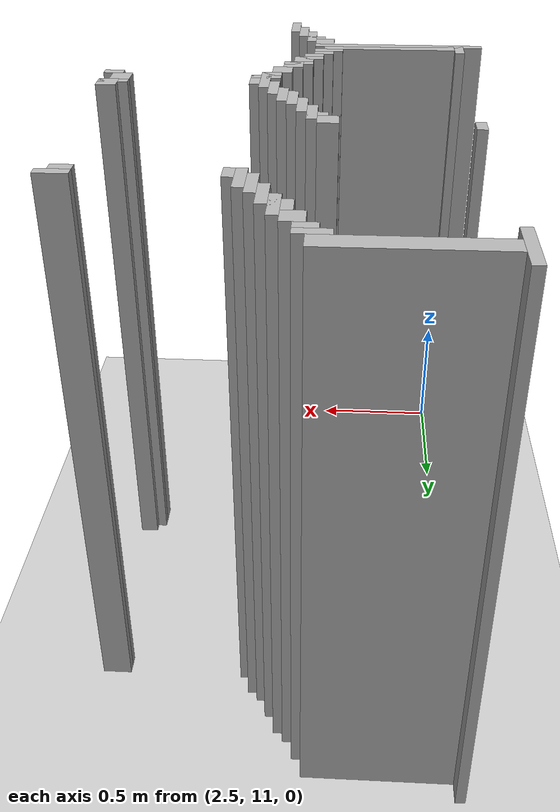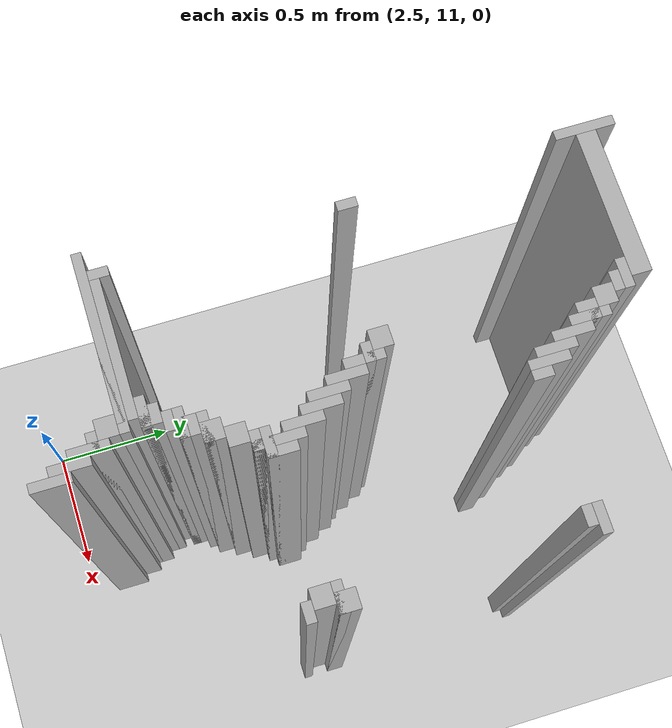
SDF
<sdf version="1.6">
 <world name="slam_world">
  <model name="ground_plane">
   <static>true</static>
   <link name="link">
    <collision name="collision">
     <geometry><plane><normal>0 0 1</normal><size>100 100</size></plane></geometry>
    </collision>
    <visual name="visual">
     <geometry><plane><normal>0 0 1</normal><size>100 100</size></plane></geometry>
     <material>
      <ambient>0.8 0.8 0.8 1</ambient>
      <diffuse>0.8 0.8 0.8 1</diffuse>
      <specular>0.8 0.8 0.8 1</specular>
     </material>
    </visual>
   </link>
  </model>
  <model name="wall_1384">
   <static>true</static>
   <pose>2.488399071925754 13.155452436194896 1.0 0 0 0</pose>
   <link name="link">
    <collision name="collision">
     <geometry><box><size>0.03480278422273782 0.2088167053364269 2.0</size></box></geometry>
    </collision>
    <visual name="visual">
     <geometry><box><size>0.03480278422273782 0.2088167053364269 2.0</size></box></geometry>
     <material><ambient>0.5 0.5 0.5 1</ambient><diffuse>0.7 0.7 0.7 1</diffuse></material>
    </visual>
   </link>
  </model>
  <model name="wall_1405">
   <static>true</static>
   <pose>2.7668213457076565 13.155452436194896 1.0 0 0 0</pose>
   <link name="link">
    <collision name="collision">
     <geometry><box><size>0.5220417633410672 0.06960556844547564 2.0</size></box></geometry>
    </collision>
    <visual name="visual">
     <geometry><box><size>0.5220417633410672 0.06960556844547564 2.0</size></box></geometry>
     <material><ambient>0.5 0.5 0.5 1</ambient><diffuse>0.7 0.7 0.7 1</diffuse></material>
    </visual>
   </link>
  </model>
  <model name="wall_1428">
   <static>true</static>
   <pose>3.010440835266821 13.103248259860788 1.0 0 0 0</pose>
   <link name="link">
    <collision name="collision">
     <geometry><box><size>0.10440835266821345 0.03480278422273782 2.0</size></box></geometry>
    </collision>
    <visual name="visual">
     <geometry><box><size>0.10440835266821345 0.03480278422273782 2.0</size></box></geometry>
     <material><ambient>0.5 0.5 0.5 1</ambient><diffuse>0.7 0.7 0.7 1</diffuse></material>
    </visual>
   </link>
  </model>
  <model name="wall_1443">
   <static>true</static>
   <pose>3.02784222737819 13.06844547563805 1.0 0 0 0</pose>
   <link name="link">
    <collision name="collision">
     <geometry><box><size>0.06960556844547564 0.03480278422273782 2.0</size></box></geometry>
    </collision>
    <visual name="visual">
     <geometry><box><size>0.06960556844547564 0.03480278422273782 2.0</size></box></geometry>
     <material><ambient>0.5 0.5 0.5 1</ambient><diffuse>0.7 0.7 0.7 1</diffuse></material>
    </visual>
   </link>
  </model>
  <model name="wall_1450">
   <static>true</static>
   <pose>3.062645011600928 13.016241299303944 1.0 0 0 0</pose>
   <link name="link">
    <collision name="collision">
     <geometry><box><size>0.06960556844547564 0.06960556844547564 2.0</size></box></geometry>
    </collision>
    <visual name="visual">
     <geometry><box><size>0.06960556844547564 0.06960556844547564 2.0</size></box></geometry>
     <material><ambient>0.5 0.5 0.5 1</ambient><diffuse>0.7 0.7 0.7 1</diffuse></material>
    </visual>
   </link>
  </model>
  <model name="wall_1466">
   <static>true</static>
   <pose>3.1148491879350346 12.946635730858468 1.0 0 0 0</pose>
   <link name="link">
    <collision name="collision">
     <geometry><box><size>0.03480278422273782 0.13921113689095127 2.0</size></box></geometry>
    </collision>
    <visual name="visual">
     <geometry><box><size>0.03480278422273782 0.13921113689095127 2.0</size></box></geometry>
     <material><ambient>0.5 0.5 0.5 1</ambient><diffuse>0.7 0.7 0.7 1</diffuse></material>
    </visual>
   </link>
  </model>
  <model name="wall_1482">
   <static>true</static>
   <pose>3.097447795823666 12.946635730858468 1.0 0 0 0</pose>
   <link name="link">
    <collision name="collision">
     <geometry><box><size>0.06960556844547564 0.06960556844547564 2.0</size></box></geometry>
    </collision>
    <visual name="visual">
     <geometry><box><size>0.06960556844547564 0.06960556844547564 2.0</size></box></geometry>
     <material><ambient>0.5 0.5 0.5 1</ambient><diffuse>0.7 0.7 0.7 1</diffuse></material>
    </visual>
   </link>
  </model>
  <model name="wall_1498">
   <static>true</static>
   <pose>3.1496519721577725 12.877030162412993 1.0 0 0 0</pose>
   <link name="link">
    <collision name="collision">
     <geometry><box><size>0.03480278422273782 0.13921113689095127 2.0</size></box></geometry>
    </collision>
    <visual name="visual">
     <geometry><box><size>0.03480278422273782 0.13921113689095127 2.0</size></box></geometry>
     <material><ambient>0.5 0.5 0.5 1</ambient><diffuse>0.7 0.7 0.7 1</diffuse></material>
    </visual>
   </link>
  </model>
  <model name="wall_1523">
   <static>true</static>
   <pose>3.1844547563805103 12.807424593967516 1.0 0 0 0</pose>
   <link name="link">
    <collision name="collision">
     <geometry><box><size>0.03480278422273782 0.13921113689095127 2.0</size></box></geometry>
    </collision>
    <visual name="visual">
     <geometry><box><size>0.03480278422273782 0.13921113689095127 2.0</size></box></geometry>
     <material><ambient>0.5 0.5 0.5 1</ambient><diffuse>0.7 0.7 0.7 1</diffuse></material>
    </visual>
   </link>
  </model>
  <model name="wall_1539">
   <static>true</static>
   <pose>3.219257540603248 12.772621809744779 1.0 0 0 0</pose>
   <link name="link">
    <collision name="collision">
     <geometry><box><size>0.03480278422273782 0.13921113689095127 2.0</size></box></geometry>
    </collision>
    <visual name="visual">
     <geometry><box><size>0.03480278422273782 0.13921113689095127 2.0</size></box></geometry>
     <material><ambient>0.5 0.5 0.5 1</ambient><diffuse>0.7 0.7 0.7 1</diffuse></material>
    </visual>
   </link>
  </model>
  <model name="wall_1564">
   <static>true</static>
   <pose>3.254060324825986 12.737819025522041 1.0 0 0 0</pose>
   <link name="link">
    <collision name="collision">
     <geometry><box><size>0.03480278422273782 0.06960556844547564 2.0</size></box></geometry>
    </collision>
    <visual name="visual">
     <geometry><box><size>0.03480278422273782 0.06960556844547564 2.0</size></box></geometry>
     <material><ambient>0.5 0.5 0.5 1</ambient><diffuse>0.7 0.7 0.7 1</diffuse></material>
    </visual>
   </link>
  </model>
  <model name="wall_1565">
   <static>true</static>
   <pose>3.741299303944315 12.75522041763341 1.0 0 0 0</pose>
   <link name="link">
    <collision name="collision">
     <geometry><box><size>0.10440835266821345 0.03480278422273782 2.0</size></box></geometry>
    </collision>
    <visual name="visual">
     <geometry><box><size>0.10440835266821345 0.03480278422273782 2.0</size></box></geometry>
     <material><ambient>0.5 0.5 0.5 1</ambient><diffuse>0.7 0.7 0.7 1</diffuse></material>
    </visual>
   </link>
  </model>
  <model name="wall_1577">
   <static>true</static>
   <pose>3.7238979118329465 12.720417633410673 1.0 0 0 0</pose>
   <link name="link">
    <collision name="collision">
     <geometry><box><size>0.06960556844547564 0.03480278422273782 2.0</size></box></geometry>
    </collision>
    <visual name="visual">
     <geometry><box><size>0.06960556844547564 0.03480278422273782 2.0</size></box></geometry>
     <material><ambient>0.5 0.5 0.5 1</ambient><diffuse>0.7 0.7 0.7 1</diffuse></material>
    </visual>
   </link>
  </model>
  <model name="wall_1696">
   <static>true</static>
   <pose>2.523201856148492 12.320185614849187 1.0 0 0 0</pose>
   <link name="link">
    <collision name="collision">
     <geometry><box><size>0.03480278422273782 0.06960556844547564 2.0</size></box></geometry>
    </collision>
    <visual name="visual">
     <geometry><box><size>0.03480278422273782 0.06960556844547564 2.0</size></box></geometry>
     <material><ambient>0.5 0.5 0.5 1</ambient><diffuse>0.7 0.7 0.7 1</diffuse></material>
    </visual>
   </link>
  </model>
  <model name="wall_1707">
   <static>true</static>
   <pose>2.9930394431554523 12.28538283062645 1.0 0 0 0</pose>
   <link name="link">
    <collision name="collision">
     <geometry><box><size>0.06960556844547564 0.06960556844547564 2.0</size></box></geometry>
    </collision>
    <visual name="visual">
     <geometry><box><size>0.06960556844547564 0.06960556844547564 2.0</size></box></geometry>
     <material><ambient>0.5 0.5 0.5 1</ambient><diffuse>0.7 0.7 0.7 1</diffuse></material>
    </visual>
   </link>
  </model>
  <model name="wall_1720">
   <static>true</static>
   <pose>3.045243619489559 12.215777262180975 1.0 0 0 0</pose>
   <link name="link">
    <collision name="collision">
     <geometry><box><size>0.03480278422273782 0.13921113689095127 2.0</size></box></geometry>
    </collision>
    <visual name="visual">
     <geometry><box><size>0.03480278422273782 0.13921113689095127 2.0</size></box></geometry>
     <material><ambient>0.5 0.5 0.5 1</ambient><diffuse>0.7 0.7 0.7 1</diffuse></material>
    </visual>
   </link>
  </model>
  <model name="wall_1739">
   <static>true</static>
   <pose>3.02784222737819 12.233178654292344 1.0 0 0 0</pose>
   <link name="link">
    <collision name="collision">
     <geometry><box><size>0.06960556844547564 0.03480278422273782 2.0</size></box></geometry>
    </collision>
    <visual name="visual">
     <geometry><box><size>0.06960556844547564 0.03480278422273782 2.0</size></box></geometry>
     <material><ambient>0.5 0.5 0.5 1</ambient><diffuse>0.7 0.7 0.7 1</diffuse></material>
    </visual>
   </link>
  </model>
  <model name="wall_1755">
   <static>true</static>
   <pose>3.0800464037122968 12.146171693735498 1.0 0 0 0</pose>
   <link name="link">
    <collision name="collision">
     <geometry><box><size>0.03480278422273782 0.13921113689095127 2.0</size></box></geometry>
    </collision>
    <visual name="visual">
     <geometry><box><size>0.03480278422273782 0.13921113689095127 2.0</size></box></geometry>
     <material><ambient>0.5 0.5 0.5 1</ambient><diffuse>0.7 0.7 0.7 1</diffuse></material>
    </visual>
   </link>
  </model>
  <model name="wall_1771">
   <static>true</static>
   <pose>3.1148491879350346 12.076566125290023 1.0 0 0 0</pose>
   <link name="link">
    <collision name="collision">
     <geometry><box><size>0.03480278422273782 0.13921113689095127 2.0</size></box></geometry>
    </collision>
    <visual name="visual">
     <geometry><box><size>0.03480278422273782 0.13921113689095127 2.0</size></box></geometry>
     <material><ambient>0.5 0.5 0.5 1</ambient><diffuse>0.7 0.7 0.7 1</diffuse></material>
    </visual>
   </link>
  </model>
  <model name="wall_1787">
   <static>true</static>
   <pose>3.1496519721577725 12.041763341067284 1.0 0 0 0</pose>
   <link name="link">
    <collision name="collision">
     <geometry><box><size>0.03480278422273782 0.13921113689095127 2.0</size></box></geometry>
    </collision>
    <visual name="visual">
     <geometry><box><size>0.03480278422273782 0.13921113689095127 2.0</size></box></geometry>
     <material><ambient>0.5 0.5 0.5 1</ambient><diffuse>0.7 0.7 0.7 1</diffuse></material>
    </visual>
   </link>
  </model>
  <model name="wall_1813">
   <static>true</static>
   <pose>3.1844547563805103 11.97215777262181 1.0 0 0 0</pose>
   <link name="link">
    <collision name="collision">
     <geometry><box><size>0.03480278422273782 0.13921113689095127 2.0</size></box></geometry>
    </collision>
    <visual name="visual">
     <geometry><box><size>0.03480278422273782 0.13921113689095127 2.0</size></box></geometry>
     <material><ambient>0.5 0.5 0.5 1</ambient><diffuse>0.7 0.7 0.7 1</diffuse></material>
    </visual>
   </link>
  </model>
  <model name="wall_1836">
   <static>true</static>
   <pose>3.219257540603248 11.885150812064964 1.0 0 0 0</pose>
   <link name="link">
    <collision name="collision">
     <geometry><box><size>0.03480278422273782 0.17401392111368907 2.0</size></box></geometry>
    </collision>
    <visual name="visual">
     <geometry><box><size>0.03480278422273782 0.17401392111368907 2.0</size></box></geometry>
     <material><ambient>0.5 0.5 0.5 1</ambient><diffuse>0.7 0.7 0.7 1</diffuse></material>
    </visual>
   </link>
  </model>
  <model name="wall_1837">
   <static>true</static>
   <pose>3.7587006960556844 11.937354988399072 1.0 0 0 0</pose>
   <link name="link">
    <collision name="collision">
     <geometry><box><size>0.06960556844547564 0.06960556844547564 2.0</size></box></geometry>
    </collision>
    <visual name="visual">
     <geometry><box><size>0.06960556844547564 0.06960556844547564 2.0</size></box></geometry>
     <material><ambient>0.5 0.5 0.5 1</ambient><diffuse>0.7 0.7 0.7 1</diffuse></material>
    </visual>
   </link>
  </model>
  <model name="wall_1852">
   <static>true</static>
   <pose>3.254060324825986 11.885150812064964 1.0 0 0 0</pose>
   <link name="link">
    <collision name="collision">
     <geometry><box><size>0.03480278422273782 0.10440835266821345 2.0</size></box></geometry>
    </collision>
    <visual name="visual">
     <geometry><box><size>0.03480278422273782 0.10440835266821345 2.0</size></box></geometry>
     <material><ambient>0.5 0.5 0.5 1</ambient><diffuse>0.7 0.7 0.7 1</diffuse></material>
    </visual>
   </link>
  </model>
  <model name="wall_1853">
   <static>true</static>
   <pose>3.741299303944315 11.919953596287703 1.0 0 0 0</pose>
   <link name="link">
    <collision name="collision">
     <geometry><box><size>0.10440835266821345 0.03480278422273782 2.0</size></box></geometry>
    </collision>
    <visual name="visual">
     <geometry><box><size>0.10440835266821345 0.03480278422273782 2.0</size></box></geometry>
     <material><ambient>0.5 0.5 0.5 1</ambient><diffuse>0.7 0.7 0.7 1</diffuse></material>
    </visual>
   </link>
  </model>
  <model name="wall_1867">
   <static>true</static>
   <pose>3.7238979118329465 11.867749419953595 1.0 0 0 0</pose>
   <link name="link">
    <collision name="collision">
     <geometry><box><size>0.06960556844547564 0.06960556844547564 2.0</size></box></geometry>
    </collision>
    <visual name="visual">
     <geometry><box><size>0.06960556844547564 0.06960556844547564 2.0</size></box></geometry>
     <material><ambient>0.5 0.5 0.5 1</ambient><diffuse>0.7 0.7 0.7 1</diffuse></material>
    </visual>
   </link>
  </model>
  <model name="wall_1880">
   <static>true</static>
   <pose>3.219257540603248 11.850348027842227 1.0 0 0 0</pose>
   <link name="link">
    <collision name="collision">
     <geometry><box><size>0.10440835266821345 0.03480278422273782 2.0</size></box></geometry>
    </collision>
    <visual name="visual">
     <geometry><box><size>0.10440835266821345 0.03480278422273782 2.0</size></box></geometry>
     <material><ambient>0.5 0.5 0.5 1</ambient><diffuse>0.7 0.7 0.7 1</diffuse></material>
    </visual>
   </link>
  </model>
  <model name="wall_1896">
   <static>true</static>
   <pose>3.201856148491879 11.81554524361949 1.0 0 0 0</pose>
   <link name="link">
    <collision name="collision">
     <geometry><box><size>0.06960556844547564 0.03480278422273782 2.0</size></box></geometry>
    </collision>
    <visual name="visual">
     <geometry><box><size>0.06960556844547564 0.03480278422273782 2.0</size></box></geometry>
     <material><ambient>0.5 0.5 0.5 1</ambient><diffuse>0.7 0.7 0.7 1</diffuse></material>
    </visual>
   </link>
  </model>
  <model name="wall_1897">
   <static>true</static>
   <pose>3.7587006960556844 11.81554524361949 1.0 0 0 0</pose>
   <link name="link">
    <collision name="collision">
     <geometry><box><size>0.06960556844547564 0.03480278422273782 2.0</size></box></geometry>
    </collision>
    <visual name="visual">
     <geometry><box><size>0.06960556844547564 0.03480278422273782 2.0</size></box></geometry>
     <material><ambient>0.5 0.5 0.5 1</ambient><diffuse>0.7 0.7 0.7 1</diffuse></material>
    </visual>
   </link>
  </model>
  <model name="wall_1912">
   <static>true</static>
   <pose>3.167053364269141 11.763341067285383 1.0 0 0 0</pose>
   <link name="link">
    <collision name="collision">
     <geometry><box><size>0.06960556844547564 0.06960556844547564 2.0</size></box></geometry>
    </collision>
    <visual name="visual">
     <geometry><box><size>0.06960556844547564 0.06960556844547564 2.0</size></box></geometry>
     <material><ambient>0.5 0.5 0.5 1</ambient><diffuse>0.7 0.7 0.7 1</diffuse></material>
    </visual>
   </link>
  </model>
  <model name="wall_1928">
   <static>true</static>
   <pose>3.1322505800464038 11.693735498839906 1.0 0 0 0</pose>
   <link name="link">
    <collision name="collision">
     <geometry><box><size>0.06960556844547564 0.06960556844547564 2.0</size></box></geometry>
    </collision>
    <visual name="visual">
     <geometry><box><size>0.06960556844547564 0.06960556844547564 2.0</size></box></geometry>
     <material><ambient>0.5 0.5 0.5 1</ambient><diffuse>0.7 0.7 0.7 1</diffuse></material>
    </visual>
   </link>
  </model>
  <model name="wall_1944">
   <static>true</static>
   <pose>3.1148491879350346 11.676334106728538 1.0 0 0 0</pose>
   <link name="link">
    <collision name="collision">
     <geometry><box><size>0.10440835266821345 0.03480278422273782 2.0</size></box></geometry>
    </collision>
    <visual name="visual">
     <geometry><box><size>0.10440835266821345 0.03480278422273782 2.0</size></box></geometry>
     <material><ambient>0.5 0.5 0.5 1</ambient><diffuse>0.7 0.7 0.7 1</diffuse></material>
    </visual>
   </link>
  </model>
  <model name="wall_1959">
   <static>true</static>
   <pose>3.097447795823666 11.624129930394432 1.0 0 0 0</pose>
   <link name="link">
    <collision name="collision">
     <geometry><box><size>0.06960556844547564 0.06960556844547564 2.0</size></box></geometry>
    </collision>
    <visual name="visual">
     <geometry><box><size>0.06960556844547564 0.06960556844547564 2.0</size></box></geometry>
     <material><ambient>0.5 0.5 0.5 1</ambient><diffuse>0.7 0.7 0.7 1</diffuse></material>
    </visual>
   </link>
  </model>
  <model name="wall_1969">
   <static>true</static>
   <pose>3.0800464037122968 11.606728538283063 1.0 0 0 0</pose>
   <link name="link">
    <collision name="collision">
     <geometry><box><size>0.10440835266821345 0.03480278422273782 2.0</size></box></geometry>
    </collision>
    <visual name="visual">
     <geometry><box><size>0.10440835266821345 0.03480278422273782 2.0</size></box></geometry>
     <material><ambient>0.5 0.5 0.5 1</ambient><diffuse>0.7 0.7 0.7 1</diffuse></material>
    </visual>
   </link>
  </model>
  <model name="wall_1984">
   <static>true</static>
   <pose>3.062645011600928 11.571925754060324 1.0 0 0 0</pose>
   <link name="link">
    <collision name="collision">
     <geometry><box><size>0.06960556844547564 0.03480278422273782 2.0</size></box></geometry>
    </collision>
    <visual name="visual">
     <geometry><box><size>0.06960556844547564 0.03480278422273782 2.0</size></box></geometry>
     <material><ambient>0.5 0.5 0.5 1</ambient><diffuse>0.7 0.7 0.7 1</diffuse></material>
    </visual>
   </link>
  </model>
  <model name="wall_1994">
   <static>true</static>
   <pose>3.02784222737819 11.519721577726218 1.0 0 0 0</pose>
   <link name="link">
    <collision name="collision">
     <geometry><box><size>0.06960556844547564 0.06960556844547564 2.0</size></box></geometry>
    </collision>
    <visual name="visual">
     <geometry><box><size>0.06960556844547564 0.06960556844547564 2.0</size></box></geometry>
     <material><ambient>0.5 0.5 0.5 1</ambient><diffuse>0.7 0.7 0.7 1</diffuse></material>
    </visual>
   </link>
  </model>
  <model name="wall_2008">
   <static>true</static>
   <pose>2.523201856148492 11.467517401392112 1.0 0 0 0</pose>
   <link name="link">
    <collision name="collision">
     <geometry><box><size>0.03480278422273782 0.10440835266821345 2.0</size></box></geometry>
    </collision>
    <visual name="visual">
     <geometry><box><size>0.03480278422273782 0.10440835266821345 2.0</size></box></geometry>
     <material><ambient>0.5 0.5 0.5 1</ambient><diffuse>0.7 0.7 0.7 1</diffuse></material>
    </visual>
   </link>
  </model>
  <model name="wall_2009">
   <static>true</static>
   <pose>3.010440835266821 11.502320185614849 1.0 0 0 0</pose>
   <link name="link">
    <collision name="collision">
     <geometry><box><size>0.10440835266821345 0.03480278422273782 2.0</size></box></geometry>
    </collision>
    <visual name="visual">
     <geometry><box><size>0.10440835266821345 0.03480278422273782 2.0</size></box></geometry>
     <material><ambient>0.5 0.5 0.5 1</ambient><diffuse>0.7 0.7 0.7 1</diffuse></material>
    </visual>
   </link>
  </model>
  <model name="wall_2024">
   <static>true</static>
   <pose>2.784222737819025 11.450116009280743 1.0 0 0 0</pose>
   <link name="link">
    <collision name="collision">
     <geometry><box><size>0.4872389791183295 0.06960556844547564 2.0</size></box></geometry>
    </collision>
    <visual name="visual">
     <geometry><box><size>0.4872389791183295 0.06960556844547564 2.0</size></box></geometry>
     <material><ambient>0.5 0.5 0.5 1</ambient><diffuse>0.7 0.7 0.7 1</diffuse></material>
    </visual>
   </link>
  </model>
  <model name="wall_2036">
   <static>true</static>
   <pose>2.7494199535962878 11.432714617169372 1.0 0 0 0</pose>
   <link name="link">
    <collision name="collision">
     <geometry><box><size>0.6264501160092807 0.03480278422273782 2.0</size></box></geometry>
    </collision>
    <visual name="visual">
     <geometry><box><size>0.6264501160092807 0.03480278422273782 2.0</size></box></geometry>
     <material><ambient>0.5 0.5 0.5 1</ambient><diffuse>0.7 0.7 0.7 1</diffuse></material>
    </visual>
   </link>
  </model>
  <model name="wall_2053">
   <static>true</static>
   <pose>3.02784222737819 11.380510440835266 1.0 0 0 0</pose>
   <link name="link">
    <collision name="collision">
     <geometry><box><size>0.06960556844547564 0.06960556844547564 2.0</size></box></geometry>
    </collision>
    <visual name="visual">
     <geometry><box><size>0.06960556844547564 0.06960556844547564 2.0</size></box></geometry>
     <material><ambient>0.5 0.5 0.5 1</ambient><diffuse>0.7 0.7 0.7 1</diffuse></material>
    </visual>
   </link>
  </model>
  <model name="wall_2070">
   <static>true</static>
   <pose>3.0800464037122968 11.310904872389791 1.0 0 0 0</pose>
   <link name="link">
    <collision name="collision">
     <geometry><box><size>0.03480278422273782 0.13921113689095127 2.0</size></box></geometry>
    </collision>
    <visual name="visual">
     <geometry><box><size>0.03480278422273782 0.13921113689095127 2.0</size></box></geometry>
     <material><ambient>0.5 0.5 0.5 1</ambient><diffuse>0.7 0.7 0.7 1</diffuse></material>
    </visual>
   </link>
  </model>
  <model name="wall_2085">
   <static>true</static>
   <pose>3.062645011600928 11.32830626450116 1.0 0 0 0</pose>
   <link name="link">
    <collision name="collision">
     <geometry><box><size>0.06960556844547564 0.03480278422273782 2.0</size></box></geometry>
    </collision>
    <visual name="visual">
     <geometry><box><size>0.06960556844547564 0.03480278422273782 2.0</size></box></geometry>
     <material><ambient>0.5 0.5 0.5 1</ambient><diffuse>0.7 0.7 0.7 1</diffuse></material>
    </visual>
   </link>
  </model>
  <model name="wall_2095">
   <static>true</static>
   <pose>3.1148491879350346 11.241299303944315 1.0 0 0 0</pose>
   <link name="link">
    <collision name="collision">
     <geometry><box><size>0.03480278422273782 0.13921113689095127 2.0</size></box></geometry>
    </collision>
    <visual name="visual">
     <geometry><box><size>0.03480278422273782 0.13921113689095127 2.0</size></box></geometry>
     <material><ambient>0.5 0.5 0.5 1</ambient><diffuse>0.7 0.7 0.7 1</diffuse></material>
    </visual>
   </link>
  </model>
  <model name="wall_2112">
   <static>true</static>
   <pose>3.1496519721577725 11.17169373549884 1.0 0 0 0</pose>
   <link name="link">
    <collision name="collision">
     <geometry><box><size>0.03480278422273782 0.13921113689095127 2.0</size></box></geometry>
    </collision>
    <visual name="visual">
     <geometry><box><size>0.03480278422273782 0.13921113689095127 2.0</size></box></geometry>
     <material><ambient>0.5 0.5 0.5 1</ambient><diffuse>0.7 0.7 0.7 1</diffuse></material>
    </visual>
   </link>
  </model>
 </world>
</sdf>
